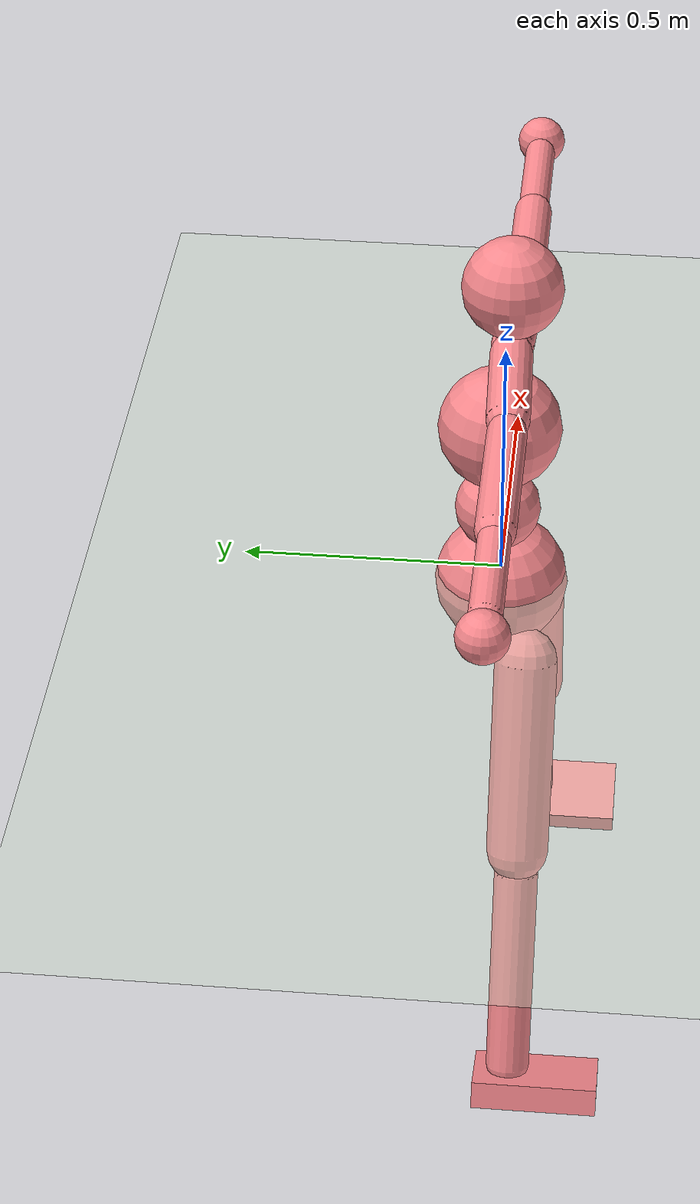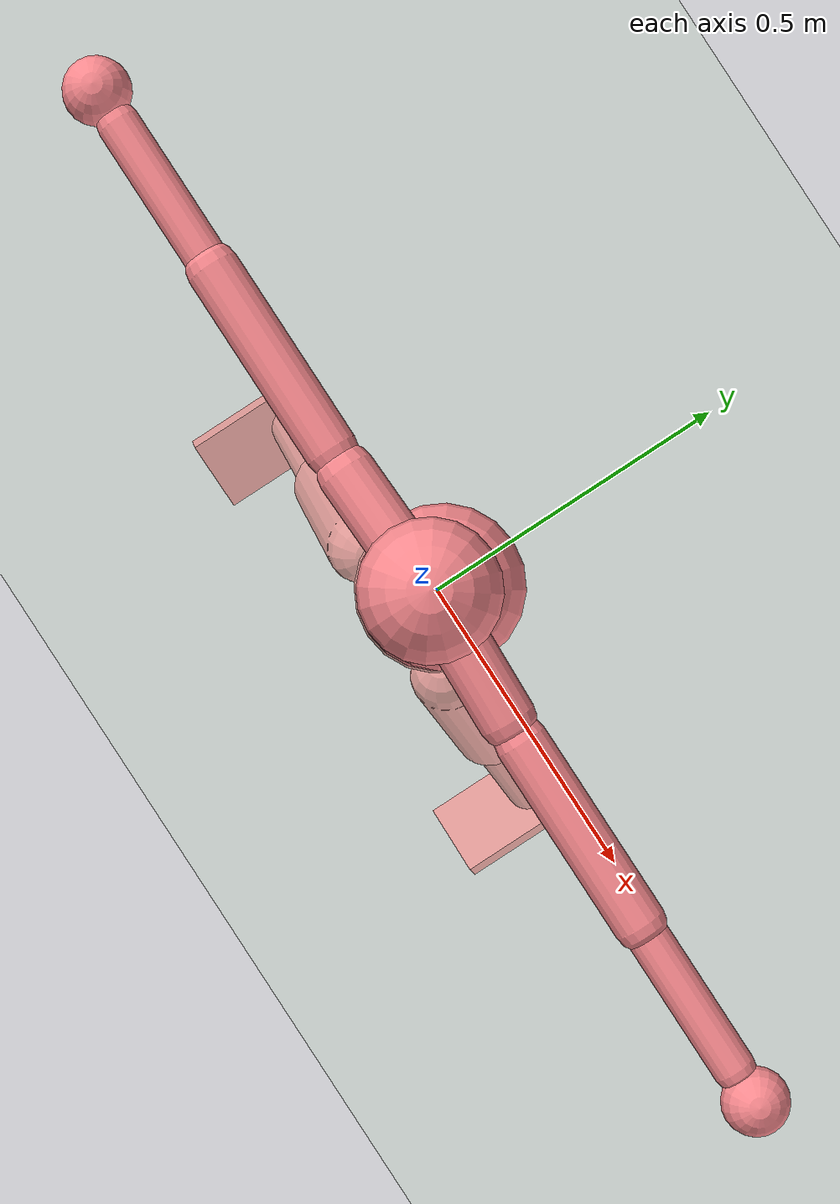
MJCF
<mujoco model="humanoid">
  <compiler angle="degree" inertiafromgeom="true" coordinate="global" />
  <include file="./common/materials.xml" />
    <visual>
    <headlight ambient=".4 .4 .4" diffuse=".8 .8 .8" specular="0.3 0.3 0.3" />
    <map znear=".01" />
    <quality shadowsize="2048" />
  </visual>
  <default>
    <joint damping="0.0" armature="0.01" stiffness="0.0" limited="true" />
    <geom conaffinity="7" condim="1" contype="7" margin="0.001" material="self" rgba=".98 .54 .56 1." />
  </default>
  <statistic extent="3" center="0 0 1" />
  <option timestep="0.00222222222" />
  <asset>
    <texture type="skybox" file="./common/sky1.png" gridsize="3 4" gridlayout=".U..LFRB.D.." width="8192" height="8192" />
    <texture builtin="flat" height="1278" mark="cross" markrgb="1 1 1" name="texgeom" random="0.01" rgb1=".8 .6 .4" rgb2=".8 .6 .4" type="cube" width="127" />
  </asset>
  <worldbody>
    <light cutoff="100" diffuse="1 1 1" dir="-0 0 -1.3" directional="true" exponent="1" pos="0 0 1.3" specular=".1 .1 .1" />
    <geom condim="3" friction="1. .1 .1" material="grid_new" name="floor" pos="0.0 0.0 0.0" rgba=".8 .9 .8 1" size="117.025545004681 117.025545004681 0.23405109000936203" type="plane" />

    <body name="root" user="0.0000 -0.0000 0.0000" pos="0.0 -0.0 0.0">
      <joint armature="0.0" limited="false" name="root" pos="0.0 -0.0 0.0" stiffness="0" type="free" />
      <geom pos="0.0 0.0 -0.028086130801123443" size="0.1287280995051491" type="sphere" />
      <body name="lhipjoint" user="0.0963 -0.0494 -0.0918" pos="0.0 -0.0 0.0">
        <body name="lfemur" user="0.2274 -0.0494 -0.4521" pos="0.1126955998395078 -0.05781061923231242 -0.10742945031429717">
          <joint axis="0.0000 -1.0000 0.0000" name="lfemur_z" pos="0.1126955998395078 -0.05781061923231242 -0.10742945031429717" range="-60.0000 70.0000" type="hinge" />
          <joint axis="-0.3420 -0.0000 0.9397" name="lfemur_y" pos="0.1126955998395078 -0.05781061923231242 -0.10742945031429717" range="-70.0000 70.0000" type="hinge" />
          <joint axis="0.9397 0.0000 0.3420" name="lfemur_x" pos="0.1126955998395078 -0.05781061923231242 -0.10742945031429717" range="-160.0000 20.0000" type="hinge" />
          <geom fromto="0.12065333689982612 -0.05781061923231242 -0.1294302527751772 0.2581583522803263 -0.05781061923231242 -0.5070716865052828" size="0.06085328340243412" type="capsule" />
          <body name="ltibia" user="0.3657 -0.0494 -0.8321" pos="0.2661160893406446 -0.05781061923231242 -0.5290724889661629">
            <joint axis="0.9397 0.0000 0.3420" name="ltibia_x" pos="0.2661160893406446 -0.05781061923231242 -0.5290724889661629" range="0.0000 170.0000" type="hinge" />
            <geom contype="1" conaffinity="1" fromto="0.2741908519459676 -0.05781061923231242 -0.5510732914270429 0.42000468102180016 -0.05781061923231242 -0.9517687575230707" size="0.04329945165173197" type="capsule" />
            <body name="lfoot" user="0.3731 -0.1606 -0.8523" pos="0.4279624180821185 -0.05781061923231242 -0.9737695599839506">
              <geom contype="1" conaffinity="1" pos="0.4346328741473853 -0.1158552895546342 -0.987929650929517" size="0.07021532700280861 0.1252173331550087 0.028086130801123443" quat="0.9848 -0.0000 -0.1736 0.0000" type="box" />
              <joint axis="-0.3420 -0.0000 0.9397" name="lfoot_z" pos="0.4279624180821185 -0.05781061923231242 -0.9737695599839506" range="-70.0000 20.0000" type="hinge" />
              <joint axis="0.0000 -1.0000 0.0000" name="lfoot_y" pos="0.4279624180821185 -0.05781061923231242 -0.9737695599839506" range="-45.0000 45.0000" type="hinge" />
              <joint axis="0.9397 0.0000 0.3420" name="lfoot_x" pos="0.4279624180821185 -0.05781061923231242 -0.9737695599839506" range="-45.0000 90.0000" type="hinge" />
            </body>
          </body>
        </body>
      </body>
      <body name="rhipjoint" user="-0.0963 -0.0494 -0.0918" pos="-0.0 -0.0 0.0">
        <body name="rfemur" user="-0.2274 -0.0494 -0.4521" pos="-0.1126955998395078 -0.05781061923231242 -0.10742945031429717">
          <joint axis="0.0000 -1.0000 -0.0000" name="rfemur_z" pos="-0.1126955998395078 -0.05781061923231242 -0.10742945031429717" range="-70.0000 60.0000" type="hinge" />
          <joint axis="0.3420 -0.0000 0.9397" name="rfemur_y" pos="-0.1126955998395078 -0.05781061923231242 -0.10742945031429717" range="-70.0000 70.0000" type="hinge" />
          <joint axis="0.9397 0.0000 -0.3420" name="rfemur_x" pos="-0.1126955998395078 -0.05781061923231242 -0.10742945031429717" range="-160.0000 20.0000" type="hinge" />
          <geom fromto="-0.12065333689982612 -0.05781061923231242 -0.1294302527751772 -0.2581583522803263 -0.05781061923231242 -0.5070716865052828" size="0.06085328340243412" type="capsule" />
          <body name="rtibia" user="-0.3657 -0.0494 -0.8321" pos="-0.2661160893406446 -0.05781061923231242 -0.5290724889661629">
            <joint axis="0.9397 0.0000 -0.3420" name="rtibia_x" pos="-0.2661160893406446 -0.05781061923231242 -0.5290724889661629" range="0.0000 170.0000" type="hinge" />
            <geom contype="2" conaffinity="2" fromto="-0.2741908519459676 -0.05781061923231242 -0.5510732914270429 -0.42000468102180016 -0.05781061923231242 -0.9517687575230707" size="0.04329945165173197" type="capsule" />
            <body name="rfoot" user="-0.3731 -0.1606 -0.8523" pos="-0.4279624180821185 -0.05781061923231242 -0.9737695599839506">
              <geom contype="2" conaffinity="2" pos="-0.4346328741473853 -0.1158552895546342 -0.987929650929517" size="0.07021532700280861 0.1252173331550087 0.028086130801123443" quat="0.9848 -0.0000 0.1736 -0.0000" type="box" />
              <joint axis="0.3420 -0.0000 0.9397" name="rfoot_z" pos="-0.4279624180821185 -0.05781061923231242 -0.9737695599839506" range="-20.0000 70.0000" type="hinge" />
              <joint axis="0.0000 -1.0000 0.0000" name="rfoot_y" pos="-0.4279624180821185 -0.05781061923231242 -0.9737695599839506" range="-45.0000 45.0000" type="hinge" />
              <joint axis="0.9397 -0.0000 -0.3420" name="rfoot_x" pos="-0.4279624180821185 -0.05781061923231242 -0.9737695599839506" range="-45.0000 90.0000" type="hinge" />
            </body>
          </body>
        </body>
      </body>
      <body name="lowerback" user="0.0006 0.0081 0.1132" pos="0.0 -0.0 0.0">
        <body name="upperback" user="0.0011 0.0071 0.2268" pos="0.000702153270028086 0.009479069145379162 0.1324729169452989">
          <geom pos="0.000702153270028086 0.009479069145379162 0.144175471445767" size="0.08191788150327671" type="sphere" />
          <joint axis="0.0000 -1.0000 0.0000" name="upperback_z" pos="0.000702153270028086 0.009479069145379162 0.1324729169452989" range="-30.0000 30.0000" type="hinge" />
          <joint axis="0.0000 -0.0000 1.0000" name="upperback_y" pos="0.000702153270028086 0.009479069145379162 0.1324729169452989" range="-30.0000 30.0000" type="hinge" />
          <joint axis="1.0000 0.0000 0.0000" name="upperback_x" pos="0.000702153270028086 0.009479069145379162 0.1324729169452989" range="-20.0000 45.0000" type="hinge" />
          <body name="thorax" user="0.0010 0.0024 0.3407" pos="0.001287280995051491 0.008308813695332352 0.26541393607061653">
            <geom pos="0.001287280995051491 0.008308813695332352 0.3286077303731443" size="0.11702554500468101" type="sphere" />
            <body name="lowerneck" user="-0.0023 -0.0083 0.4312" pos="0.0011702554500468102 0.002808613080112344 0.3987060318309482">
              <geom pos="-0.002691587535107663 -0.009713120235388523 0.6403637822656145" size="0.09362043600374481" type="sphere" />
              <joint axis="0.0000 -1.0000 0.0000" name="lowerneck_z" pos="0.0011702554500468102 0.002808613080112344 0.3987060318309482" range="-30.0000 30.0000" type="hinge" />
              <joint axis="0.0000 -0.0000 1.0000" name="lowerneck_y" pos="0.0011702554500468102 0.002808613080112344 0.3987060318309482" range="-30.0000 30.0000" type="hinge" />
              <joint axis="1.0000 0.0000 0.0000" name="lowerneck_x" pos="0.0011702554500468102 0.002808613080112344 0.3987060318309482" range="-20.0000 45.0000" type="hinge" />
              <body name="upperneck" user="-0.0013 -0.0038 0.5212" pos="-0.002691587535107663 -0.009713120235388523 0.5046141500601845">
                <body name="head" user="-0.0006 -0.0008 0.6176" pos="-0.0015213320850608531 -0.004446970710177878 0.6099371405643974">
                  <camera mode="fixed" xyaxes="-1 0 0 0 0 1" />
                </body>
              </body>
              <body name="lclavicle" user="0.1790 -0.0149 0.4121" pos="-0.002691587535107663 -0.009713120235388523 0.5046141500601845">
                <geom fromto="0.011819580045472781 -0.010298247960411929 0.5030928179751236 0.19496455797779855 -0.016851678480674065 0.48378360304935125" size="0.03978868530159155" type="capsule" />
                <joint axis="0.0000 -1.0000 0.0000" name="lclavicle_z" pos="0.0011702554500468102 0.002808613080112344 0.3987060318309482" range="0.0000 20.0000" type="hinge" />
                <joint axis="0.0000 -0.0000 1.0000" name="lclavicle_y" pos="0.0011702554500468102 0.002808613080112344 0.3987060318309482" range="-20.0000 10.0000" type="hinge" />
                <body name="lhumerus" user="0.4599 -0.0149 0.4121" pos="0.20947572555837898 -0.01743680620569747 0.4822622709642905">
                  <joint axis="-0.0000 0.8660 -0.5000" name="lhumerus_z" pos="0.20947572555837898 -0.01743680620569747 0.4822622709642905" range="-90.0000 90.0000" type="hinge" />
                  <joint axis="-1.0000 -0.0000 -0.0000" name="lhumerus_y" pos="0.20947572555837898 -0.01743680620569747 0.4822622709642905" range="-90.0000 90.0000" type="hinge" />
                  <joint axis="0.0000 -0.5000 -0.8660" name="lhumerus_x" pos="0.20947572555837898 -0.01743680620569747 0.4822622709642905" range="-60.0000 90.0000" type="hinge" />
                  <geom fromto="0.2299551959341982 -0.01743680620569747 0.4822622709642905 0.5177210111007088 -0.01743680620569747 0.4822622709642905" size="0.03627791895145111" type="capsule" />
                  <body name="lradius" user="0.6374 -0.0149 0.4121" pos="0.5382004814765279 -0.01743680620569747 0.4822622709642905">
                    <geom fromto="0.5382004814765279 -0.01743680620569747 0.4822622709642905 0.7459208238598367 -0.01743680620569747 0.4822622709642905" size="0.029256386251170254" type="capsule" />
                    <joint axis="0.0000 -0.5000 -0.8660" name="lradius_x" pos="0.5382004814765279 -0.01743680620569747 0.4822622709642905" range="-10.0000 170.0000" type="hinge" />
                    <body name="lwrist" user="0.7261 -0.0149 0.4121" pos="0.7459208238598367 -0.01743680620569747 0.4822622709642905">
                      <geom pos="0.7974120636618964 -0.01743680620569747 0.4822622709642905" size="0.046810218001872406" type="sphere" />
                    </body>
                  </body>
                </body>
              </body>
              <body name="rclavicle" user="-0.1790 -0.0149 0.4121" pos="0.002691587535107663 -0.009713120235388523 0.5046141500601845">
                <geom fromto="-0.011819580045472781 -0.010298247960411929 0.5030928179751236 -0.19496455797779855 -0.016851678480674065 0.48378360304935125" size="0.03978868530159155" type="capsule" />
                <joint axis="0.0000 -1.0000 0.0000" name="rclavicle_z" pos="-0.0011702554500468102 0.002808613080112344 0.3987060318309482" range="-20.0000 0.0000" type="hinge" />
                <joint axis="0.0000 -0.0000 1.0000" name="rclavicle_y" pos="-0.0011702554500468102 0.002808613080112344 0.3987060318309482" range="-10.0000 20.0000" type="hinge" />
                <body name="rhumerus" user="-0.4599 -0.0149 0.4121" pos="-0.20947572555837898 -0.01743680620569747 0.4822622709642905">
                  <joint axis="0.0000 0.8660 -0.5000" name="rhumerus_z" pos="-0.20947572555837898 -0.01743680620569747 0.4822622709642905" range="-90.0000 90.0000" type="hinge" />
                  <joint axis="1.0000 -0.0000 -0.0000" name="rhumerus_y" pos="-0.20947572555837898 -0.01743680620569747 0.4822622709642905" range="-90.0000 90.0000" type="hinge" />
                  <joint axis="0.0000 0.5000 0.8660" name="rhumerus_x" pos="-0.20947572555837898 -0.01743680620569747 0.4822622709642905" range="-90.0000 60.0000" type="hinge" />
                  <geom fromto="-0.2299551959341982 -0.01743680620569747 0.4822622709642905 -0.5177210111007088 -0.01743680620569747 0.4822622709642905" size="0.03627791895145111" type="capsule" />
                  <body name="rradius" user="-0.6374 -0.0149 0.4121" pos="-0.5382004814765279 -0.01743680620569747 0.4822622709642905">
                    <geom fromto="-0.5382004814765279 -0.01743680620569747 0.4822622709642905 -0.7459208238598367 -0.01743680620569747 0.4822622709642905" size="0.029256386251170254" type="capsule" />
                    <joint axis="0.0000 0.5000 0.8660" name="rradius_x" pos="-0.5382004814765279 -0.01743680620569747 0.4822622709642905" range="-10.0000 170.0000" type="hinge" />
                    <body name="rwrist" user="-0.7261 -0.0149 0.4121" pos="-0.7459208238598367 -0.01743680620569747 0.4822622709642905">
                      <geom pos="-0.7974120636618964 -0.01743680620569747 0.4822622709642905" size="0.046810218001872406" type="sphere" />
                    </body>
                  </body>
                </body>
              </body>
            </body>
          </body>
        </body>
      </body>
    </body>
  </worldbody>

  <actuator>
    <motor gear="1" joint="lfemur_z" name="lfemur_z" />
    <motor gear="1" joint="lfemur_y" name="lfemur_y" />
    <motor gear="1" joint="lfemur_x" name="lfemur_x" />
    <motor gear="1" joint="ltibia_x" name="ltibia_x" />
    <motor gear="1" joint="lfoot_z" name="lfoot_z" />
    <motor gear="1" joint="lfoot_y" name="lfoot_y" />
    <motor gear="1" joint="lfoot_x" name="lfoot_x" />
    <motor gear="1" joint="rfemur_z" name="rfemur_z" />
    <motor gear="1" joint="rfemur_y" name="rfemur_y" />
    <motor gear="1" joint="rfemur_x" name="rfemur_x" />
    <motor gear="1" joint="rtibia_x" name="rtibia_x" />
    <motor gear="1" joint="rfoot_z" name="rfoot_z" />
    <motor gear="1" joint="rfoot_y" name="rfoot_y" />
    <motor gear="1" joint="rfoot_x" name="rfoot_x" />
    <motor gear="1" joint="upperback_z" name="upperback_z" />
    <motor gear="1" joint="upperback_y" name="upperback_y" />
    <motor gear="1" joint="upperback_x" name="upperback_x" />
    <motor gear="1" joint="lowerneck_z" name="lowerneck_z" />
    <motor gear="1" joint="lowerneck_y" name="lowerneck_y" />
    <motor gear="1" joint="lowerneck_x" name="lowerneck_x" />
    <motor gear="1" joint="lclavicle_z" name="lclavicle_z" />
    <motor gear="1" joint="lclavicle_y" name="lclavicle_y" />
    <motor gear="1" joint="lhumerus_z" name="lhumerus_z" />
    <motor gear="1" joint="lhumerus_y" name="lhumerus_y" />
    <motor gear="1" joint="lhumerus_x" name="lhumerus_x" />
    <motor gear="1" joint="lradius_x" name="lradius_x" />
    <motor gear="1" joint="rclavicle_z" name="rclavicle_z" />
    <motor gear="1" joint="rclavicle_y" name="rclavicle_y" />
    <motor gear="1" joint="rhumerus_z" name="rhumerus_z" />
    <motor gear="1" joint="rhumerus_y" name="rhumerus_y" />
    <motor gear="1" joint="rhumerus_x" name="rhumerus_x" />
    <motor gear="1" joint="rradius_x" name="rradius_x" />
  </actuator>
</mujoco>

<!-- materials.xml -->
<!--
Common textures, colors and materials to be used throughout this suite. Some
materials such as xxx_highlight are activated on occurence of certain events,
for example receiving a positive reward.
-->
<mujoco>
  <asset>
    <texture name="grid" type="2d" builtin="checker" rgb1=".1 .2 .3" rgb2=".2 .3 .4" width="300" height="300" mark="edge" markrgb=".2 .3 .4"/>
    <material name="grid" texture="grid" texrepeat="1 1" texuniform="true" reflectance=".2"/>
    <texture builtin="checker" height="100" name="texplane" rgb1="0 0 0" rgb2=".8 .8 .8" type="2d" width="100"/>
    <texture name="grass" file="./common/grass.png" type="2d"/>

    <texture name="grid_new" type="2d" builtin="checker" rgb1=".1 .3 .2" rgb2=".2 .4 .3" width="1000" height="1000" mark="none" markrgb=".8 .6 .4"/>
    <material name="grid_new" texture="grid_new" texrepeat="0.2 0.2" texuniform="true" reflectance=".2"/>
    <material name="MatPlane" reflectance="0.5" shininess="1" specular="1" texrepeat="60 60" texture="texplane"/>
    <material name="GrassPlane" reflectance="0.0" shininess="1" specular="1" texrepeat="400 400" texture="grass"/>
    <material name="self" rgba=".7 .5 .3 1"/>
    <material name="self_default" rgba=".7 .5 .3 1"/>
    <material name="self_highlight" rgba="0 .5 .3 1"/>
    <material name="effector" rgba=".7 .4 .2 1"/>
    <material name="effector_default" rgba=".7 .4 .2 1"/>
    <material name="effector_highlight" rgba="0 .5 .3 1"/>
    <material name="decoration" rgba=".3 .5 .7 1"/>
    <material name="eye" rgba="0 .2 1 1"/>
    <material name="target" rgba=".6 .3 .3 1"/>
    <material name="target_default" rgba=".6 .3 .3 1"/>
    <material name="target_highlight" rgba=".6 .3 .3 .4"/>
    <material name="expert" rgba=".6 .3 .3 .4"/>
  </asset>
</mujoco>
